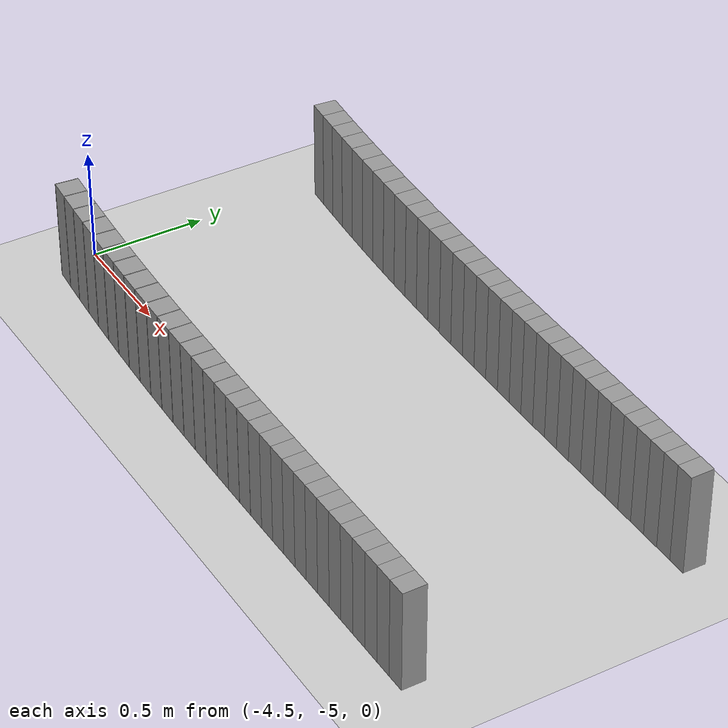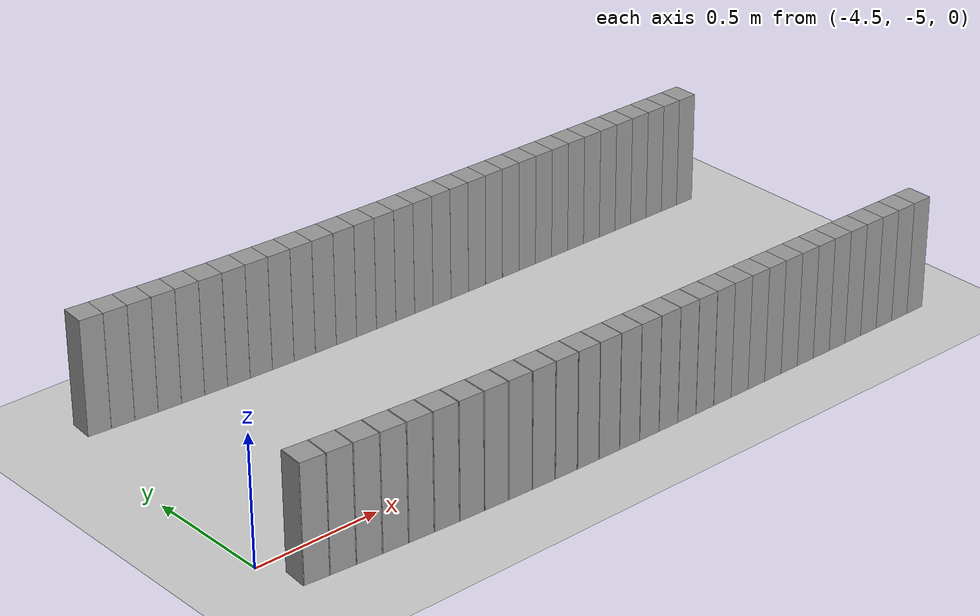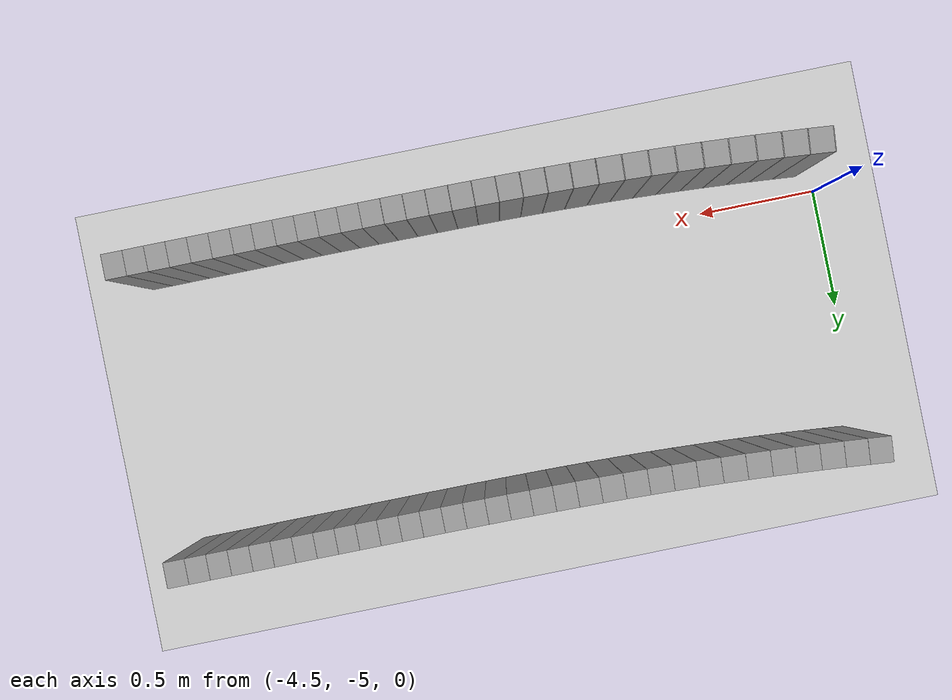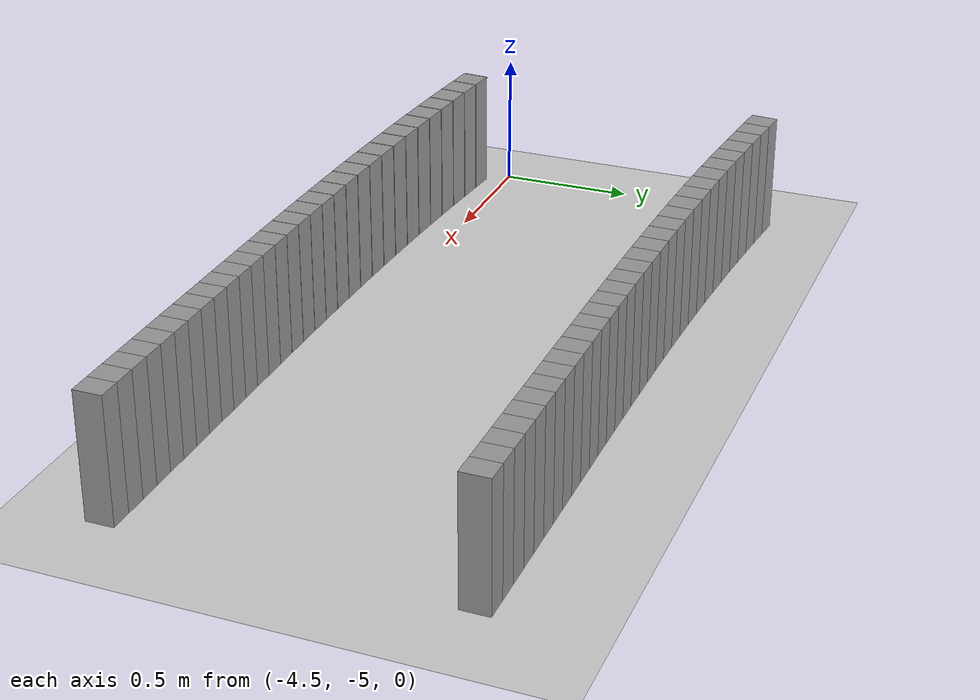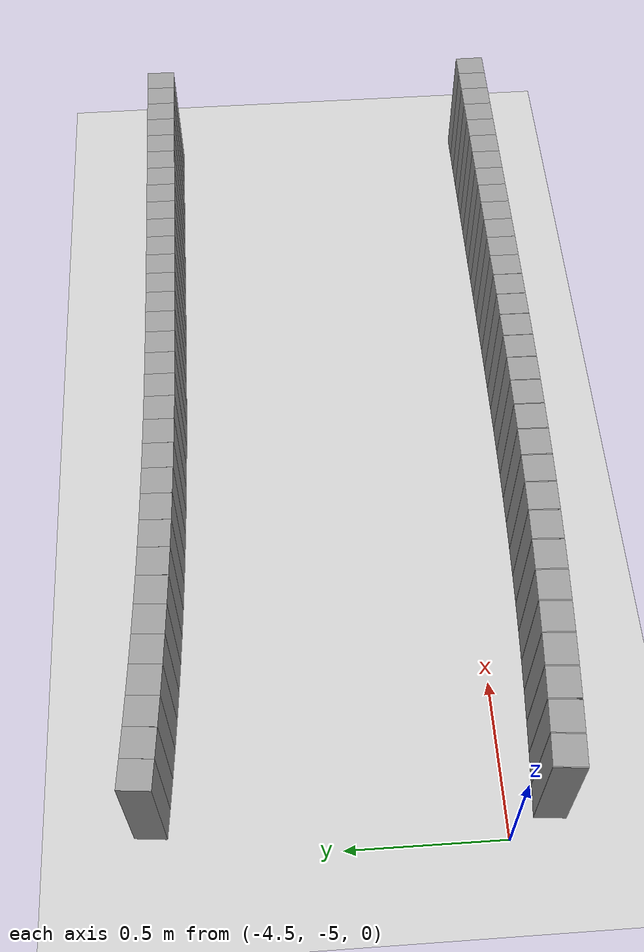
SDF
<sdf version="1.6">
 <world name="default">
  <include><uri>model://ground_plane</uri></include>
  <include><uri>model://sun</uri></include>
  <model name="wall_492_outward">
   <static>true</static>
   <link name="link">
    <collision name="collision">
     <geometry><box><size>0.09068595966989322 0.1 0.45</size></box></geometry>
    </collision>
    <visual name="visual">
     <geometry><box><size>0.09068595966989322 0.1 0.45</size></box></geometry>
     <material>
      <script><uri>file://media/materials/scripts/gazebo.material</uri><name>Gazebo/Gray</name></script>
     </material>
    </visual>
   </link>
   <pose>-4.378430754349651 -3.930292795753641 0.225 0 0 -0.0923290706793078</pose>
  </model>
  <model name="wall_493_outward">
   <static>true</static>
   <link name="link">
    <collision name="collision">
     <geometry><box><size>0.09215291821813895 0.1 0.45</size></box></geometry>
    </collision>
    <visual name="visual">
     <geometry><box><size>0.09215291821813895 0.1 0.45</size></box></geometry>
     <material>
      <script><uri>file://media/materials/scripts/gazebo.material</uri><name>Gazebo/Gray</name></script>
     </material>
    </visual>
   </link>
   <pose>-4.287378541252437 -3.9384749730468585 0.225 0 0 -0.0869575330737349</pose>
  </model>
  <model name="wall_494_outward">
   <static>true</static>
   <link name="link">
    <collision name="collision">
     <geometry><box><size>0.09332906607613842 0.1 0.45</size></box></geometry>
    </collision>
    <visual name="visual">
     <geometry><box><size>0.09332906607613842 0.1 0.45</size></box></geometry>
     <material>
      <script><uri>file://media/materials/scripts/gazebo.material</uri><name>Gazebo/Gray</name></script>
     </material>
    </visual>
   </link>
   <pose>-4.194965194341023 -3.946259078895164 0.225 0 0 -0.08114540446364624</pose>
  </model>
  <model name="wall_495_outward">
   <static>true</static>
   <link name="link">
    <collision name="collision">
     <geometry><box><size>0.0942073351267646 0.1 0.45</size></box></geometry>
    </collision>
    <visual name="visual">
     <geometry><box><size>0.0942073351267646 0.1 0.45</size></box></geometry>
     <material>
      <script><uri>file://media/materials/scripts/gazebo.material</uri><name>Gazebo/Gray</name></script>
     </material>
    </visual>
   </link>
   <pose>-4.101482858434321 -3.9535696554525073 0.225 0 0 -0.07497135058936592</pose>
  </model>
  <model name="wall_496_outward">
   <static>true</static>
   <link name="link">
    <collision name="collision">
     <geometry><box><size>0.09479352483861028 0.1 0.45</size></box></geometry>
    </collision>
    <visual name="visual">
     <geometry><box><size>0.09479352483861028 0.1 0.45</size></box></geometry>
     <material>
      <script><uri>file://media/materials/scripts/gazebo.material</uri><name>Gazebo/Gray</name></script>
     </material>
    </visual>
   </link>
   <pose>-4.007226000580614 -3.9603433852904404 0.225 0 0 -0.06853112435254348</pose>
  </model>
  <model name="wall_497_outward">
   <static>true</static>
   <link name="link">
    <collision name="collision">
     <geometry><box><size>0.09509572229106611 0.1 0.45</size></box></geometry>
    </collision>
    <visual name="visual">
     <geometry><box><size>0.09509572229106611 0.1 0.45</size></box></geometry>
     <material>
      <script><uri>file://media/materials/scripts/gazebo.material</uri><name>Gazebo/Gray</name></script>
     </material>
    </visual>
   </link>
   <pose>-3.912483809104236 -3.9665321446471573 0.225 0 0 -0.06193823305481885</pose>
  </model>
  <model name="wall_498_outward">
   <static>true</static>
   <link name="link">
    <collision name="collision">
     <geometry><box><size>0.09513239084984035 0.1 0.45</size></box></geometry>
    </collision>
    <visual name="visual">
     <geometry><box><size>0.09513239084984035 0.1 0.45</size></box></geometry>
     <material>
      <script><uri>file://media/materials/scripts/gazebo.material</uri><name>Gazebo/Gray</name></script>
     </material>
    </visual>
   </link>
   <pose>-3.8175336663359123 -3.9721048258202507 0.225 0 0 -0.055309752761574627</pose>
  </model>
  <model name="wall_499_outward">
   <static>true</static>
   <link name="link">
    <collision name="collision">
     <geometry><box><size>0.09492510796500421 0.1 0.45</size></box></geometry>
    </collision>
    <visual name="visual">
     <geometry><box><size>0.09492510796500421 0.1 0.45</size></box></geometry>
     <material>
      <script><uri>file://media/materials/scripts/gazebo.material</uri><name>Gazebo/Gray</name></script>
     </material>
    </visual>
   </link>
   <pose>-3.72263409794573 -3.9770483766909503 0.225 0 0 -0.04877392948051919</pose>
  </model>
  <model name="wall_500_outward">
   <static>true</static>
   <link name="link">
    <collision name="collision">
     <geometry><box><size>0.09449471242001156 0.1 0.45</size></box></geometry>
    </collision>
    <visual name="visual">
     <geometry><box><size>0.09449471242001156 0.1 0.45</size></box></geometry>
     <material>
      <script><uri>file://media/materials/scripts/gazebo.material</uri><name>Gazebo/Gray</name></script>
     </material>
    </visual>
   </link>
   <pose>-3.6280231827447254 -3.981367169139006 0.225 0 0 -0.04244421560597662</pose>
  </model>
  <model name="wall_501_outward">
   <static>true</static>
   <link name="link">
    <collision name="collision">
     <geometry><box><size>0.09386748407110541 0.1 0.45</size></box></geometry>
    </collision>
    <visual name="visual">
     <geometry><box><size>0.09386748407110541 0.1 0.45</size></box></geometry>
     <material>
      <script><uri>file://media/materials/scripts/gazebo.material</uri><name>Gazebo/Gray</name></script>
     </material>
    </visual>
   </link>
   <pose>-3.533915769664726 -3.9850811627304763 0.225 0 0 -0.03642574918023505</pose>
  </model>
  <model name="wall_502_outward">
   <static>true</static>
   <link name="link">
    <collision name="collision">
     <geometry><box><size>0.09306987827697667 0.1 0.45</size></box></geometry>
    </collision>
    <visual name="visual">
     <geometry><box><size>0.09306987827697667 0.1 0.45</size></box></geometry>
     <material>
      <script><uri>file://media/materials/scripts/gazebo.material</uri><name>Gazebo/Gray</name></script>
     </material>
    </visual>
   </link>
   <pose>-3.4405003147137005 -3.9882241541487 0.225 0 0 -0.03081554862152106</pose>
  </model>
  <model name="wall_503_outward">
   <static>true</static>
   <link name="link">
    <collision name="collision">
     <geometry><box><size>0.09212973341280335 0.1 0.45</size></box></geometry>
    </collision>
    <visual name="visual">
     <geometry><box><size>0.09212973341280335 0.1 0.45</size></box></geometry>
     <material>
      <script><uri>file://media/materials/scripts/gazebo.material</uri><name>Gazebo/Gray</name></script>
     </material>
    </visual>
   </link>
   <pose>-3.3479377892946824 -3.9908407131273007 0.225 0 0 -0.025679358927565114</pose>
  </model>
  <model name="wall_504_outward">
   <static>true</static>
   <link name="link">
    <collision name="collision">
     <geometry><box><size>0.09107926288362682 0.1 0.45</size></box></geometry>
    </collision>
    <visual name="visual">
     <geometry><box><size>0.09107926288362682 0.1 0.45</size></box></geometry>
     <material>
      <script><uri>file://media/materials/scripts/gazebo.material</uri><name>Gazebo/Gray</name></script>
     </material>
    </visual>
   </link>
   <pose>-3.2563585826073833 -3.9929827519544747 0.225 0 0 -0.02106568510119971</pose>
  </model>
  <model name="wall_505_outward">
   <static>true</static>
   <link name="link">
    <collision name="collision">
     <geometry><box><size>0.08995566165365877 0.1 0.45</size></box></geometry>
    </collision>
    <visual name="visual">
     <geometry><box><size>0.08995566165365877 0.1 0.45</size></box></geometry>
     <material>
      <script><uri>file://media/materials/scripts/gazebo.material</uri><name>Gazebo/Gray</name></script>
     </material>
    </visual>
   </link>
   <pose>-3.1658577214169066 -3.9947064677801576 0.225 0 0 -0.01699726370911794</pose>
  </model>
  <model name="wall_506_outward">
   <static>true</static>
   <link name="link">
    <collision name="collision">
     <geometry><box><size>0.08879694049244939 0.1 0.45</size></box></geometry>
    </collision>
    <visual name="visual">
     <geometry><box><size>0.08879694049244939 0.1 0.45</size></box></geometry>
     <material>
      <script><uri>file://media/materials/scripts/gazebo.material</uri><name>Gazebo/Gray</name></script>
     </material>
    </visual>
   </link>
   <pose>-3.0764919542721643 -3.9960696348860143 0.225 0 0 -0.013485194604481318</pose>
  </model>
  <model name="wall_507_outward">
   <static>true</static>
   <link name="link">
    <collision name="collision">
     <geometry><box><size>0.0876418035020083 0.1 0.45</size></box></geometry>
    </collision>
    <visual name="visual">
     <geometry><box><size>0.0876418035020083 0.1 0.45</size></box></geometry>
     <material>
      <script><uri>file://media/materials/scripts/gazebo.material</uri><name>Gazebo/Gray</name></script>
     </material>
    </visual>
   </link>
   <pose>-2.988279039164019 -3.997128868970515 0.225 0 0 -0.010509566864553486</pose>
  </model>
  <model name="wall_508_outward">
   <static>true</static>
   <link name="link">
    <collision name="collision">
     <geometry><box><size>0.08653645617514082 0.1 0.45</size></box></geometry>
    </collision>
    <visual name="visual">
     <geometry><box><size>0.08653645617514082 0.1 0.45</size></box></geometry>
     <material>
      <script><uri>file://media/materials/scripts/gazebo.material</uri><name>Gazebo/Gray</name></script>
     </material>
    </visual>
   </link>
   <pose>-2.901193726605305 -3.9979371245555724 0.225 0 0 -0.00803659230562324</pose>
  </model>
  <model name="wall_509_outward">
   <static>true</static>
   <link name="link">
    <collision name="collision">
     <geometry><box><size>0.08551885083889642 0.1 0.45</size></box></geometry>
    </collision>
    <visual name="visual">
     <geometry><box><size>0.08551885083889642 0.1 0.45</size></box></geometry>
     <material>
      <script><uri>file://media/materials/scripts/gazebo.material</uri><name>Gazebo/Gray</name></script>
     </material>
    </visual>
   </link>
   <pose>-2.8151682479716347 -3.9985427240241065 0.225 0 0 -0.006030849652169696</pose>
  </model>
  <model name="wall_510_outward">
   <static>true</static>
   <link name="link">
    <collision name="collision">
     <geometry><box><size>0.08462511511139649 0.1 0.45</size></box></geometry>
    </collision>
    <visual name="visual">
     <geometry><box><size>0.08462511511139649 0.1 0.45</size></box></geometry>
     <material>
      <script><uri>file://media/materials/scripts/gazebo.material</uri><name>Gazebo/Gray</name></script>
     </material>
    </visual>
   </link>
   <pose>-2.730097458334881 -3.998988165553312 0.225 0 0 -0.004432916647774569</pose>
  </model>
  <model name="wall_511_outward">
   <static>true</static>
   <link name="link">
    <collision name="collision">
     <geometry><box><size>0.08388573940246179 0.1 0.45</size></box></geometry>
    </collision>
    <visual name="visual">
     <geometry><box><size>0.08388573940246179 0.1 0.45</size></box></geometry>
     <material>
      <script><uri>file://media/materials/scripts/gazebo.material</uri><name>Gazebo/Gray</name></script>
     </material>
    </visual>
   </link>
   <pose>-2.645842660860012 -3.999309730594722 0.225 0 0 -0.003194770501325026</pose>
  </model>
  <model name="wall_512_outward">
   <static>true</static>
   <link name="link">
    <collision name="collision">
     <geometry><box><size>0.08331772802041469 0.1 0.45</size></box></geometry>
    </collision>
    <visual name="visual">
     <geometry><box><size>0.08331772802041469 0.1 0.45</size></box></geometry>
     <material>
      <script><uri>file://media/materials/scripts/gazebo.material</uri><name>Gazebo/Gray</name></script>
     </material>
    </visual>
   </link>
   <pose>-2.562241247065816 -3.9995376480716933 0.225 0 0 -0.0022545007850144298</pose>
  </model>
  <model name="wall_513_outward">
   <static>true</static>
   <link name="link">
    <collision name="collision">
     <geometry><box><size>0.08293020767326222 0.1 0.45</size></box></geometry>
    </collision>
    <visual name="visual">
     <geometry><box><size>0.08293020767326222 0.1 0.45</size></box></geometry>
     <material>
      <script><uri>file://media/materials/scripts/gazebo.material</uri><name>Gazebo/Gray</name></script>
     </material>
    </visual>
   </link>
   <pose>-2.4791174353803456 -3.9996961478665063 0.225 0 0 -0.0015574532050864909</pose>
  </model>
  <model name="wall_514_outward">
   <static>true</static>
   <link name="link">
    <collision name="collision">
     <geometry><box><size>0.08271800158028444 0.1 0.45</size></box></geometry>
    </collision>
    <visual name="visual">
     <geometry><box><size>0.08271800158028444 0.1 0.45</size></box></geometry>
     <material>
      <script><uri>file://media/materials/scripts/gazebo.material</uri><name>Gazebo/Gray</name></script>
     </material>
    </visual>
   </link>
   <pose>-2.3962934039817583 -3.999804286843619 0.225 0 0 -0.0010531940223855185</pose>
  </model>
  <model name="wall_515_outward">
   <static>true</static>
   <link name="link">
    <collision name="collision">
     <geometry><box><size>0.08266485304090782 0.1 0.45</size></box></geometry>
    </collision>
    <visual name="visual">
     <geometry><box><size>0.08266485304090782 0.1 0.45</size></box></geometry>
     <material>
      <script><uri>file://media/materials/scripts/gazebo.material</uri><name>Gazebo/Gray</name></script>
     </material>
    </visual>
   </link>
   <pose>-2.3136020096557885 -3.9998766642405825 0.225 0 0 -0.0006972335614733618</pose>
  </model>
  <model name="wall_516_outward">
   <static>true</static>
   <link name="link">
    <collision name="collision">
     <geometry><box><size>0.0827397409179019 0.1 0.45</size></box></geometry>
    </collision>
    <visual name="visual">
     <geometry><box><size>0.0827397409179019 0.1 0.45</size></box></geometry>
     <material>
      <script><uri>file://media/materials/scripts/gazebo.material</uri><name>Gazebo/Gray</name></script>
     </material>
    </visual>
   </link>
   <pose>-2.230899726949211 -3.99992418232758 0.225 0 0 -0.0004520133811085437</pose>
  </model>
  <model name="wall_517_outward">
   <static>true</static>
   <link name="link">
    <collision name="collision">
     <geometry><box><size>0.08290997204144468 0.1 0.45</size></box></geometry>
    </collision>
    <visual name="visual">
     <geometry><box><size>0.08290997204144468 0.1 0.45</size></box></geometry>
     <material>
      <script><uri>file://media/materials/scripts/gazebo.material</uri><name>Gazebo/Gray</name></script>
     </material>
    </visual>
   </link>
   <pose>-2.1480748763283017 -3.999954516082421 0.225 0 0 -0.00028064225138934413</pose>
  </model>
  <model name="wall_518_outward">
   <static>true</static>
   <link name="link">
    <collision name="collision">
     <geometry><box><size>0.08313143534032821 0.1 0.45</size></box></geometry>
    </collision>
    <visual name="visual">
     <geometry><box><size>0.08313143534032821 0.1 0.45</size></box></geometry>
     <material>
      <script><uri>file://media/materials/scripts/gazebo.material</uri><name>Gazebo/Gray</name></script>
     </material>
    </visual>
   </link>
   <pose>-2.0650541749077735 -3.999973432009655 0.225 0 0 -0.0001751902101989114</pose>
  </model>
  <model name="wall_519_outward">
   <static>true</static>
   <link name="link">
    <collision name="collision">
     <geometry><box><size>0.08334973034785155 0.1 0.45</size></box></geometry>
    </collision>
    <visual name="visual">
     <geometry><box><size>0.08334973034785155 0.1 0.45</size></box></geometry>
     <material>
      <script><uri>file://media/materials/scripts/gazebo.material</uri><name>Gazebo/Gray</name></script>
     </material>
    </visual>
   </link>
   <pose>-1.9818135929410565 -3.9999851819587087 0.225 0 0 -0.00010721191934723112</pose>
  </model>
  <model name="wall_520_outward">
   <static>true</static>
   <link name="link">
    <collision name="collision">
     <geometry><box><size>0.08352584369516561 0.1 0.45</size></box></geometry>
    </collision>
    <visual name="visual">
     <geometry><box><size>0.08352584369516561 0.1 0.45</size></box></geometry>
     <material>
      <script><uri>file://media/materials/scripts/gazebo.material</uri><name>Gazebo/Gray</name></script>
     </material>
    </visual>
   </link>
   <pose>-1.8983758062292113 -3.999992070602322 0.225 0 0 -5.7960536100117336e-05</pose>
  </model>
  <model name="wall_521_outward">
   <static>true</static>
   <link name="link">
    <collision name="collision">
     <geometry><box><size>0.08361672007936877 0.1 0.45</size></box></geometry>
    </collision>
    <visual name="visual">
     <geometry><box><size>0.08361672007936877 0.1 0.45</size></box></geometry>
     <material>
      <script><uri>file://media/materials/scripts/gazebo.material</uri><name>Gazebo/Gray</name></script>
     </material>
    </visual>
   </link>
   <pose>-1.8148045244368476 -3.9999959298940637 0.225 0 0 -3.4411548374948586e-05</pose>
  </model>
  <model name="wall_522_outward">
   <static>true</static>
   <link name="link">
    <collision name="collision">
     <geometry><box><size>0.08358014926168003 0.1 0.45</size></box></geometry>
    </collision>
    <visual name="visual">
     <geometry><box><size>0.08358014926168003 0.1 0.45</size></box></geometry>
     <material>
      <script><uri>file://media/materials/scripts/gazebo.material</uri><name>Gazebo/Gray</name></script>
     </material>
    </visual>
   </link>
   <pose>-1.731206089799474 -3.9999982063396065 0.225 0 0 -2.004674904921061e-05</pose>
  </model>
  <model name="wall_523_outward">
   <static>true</static>
   <link name="link">
    <collision name="collision">
     <geometry><box><size>0.08338973849064733 0.1 0.45</size></box></geometry>
    </collision>
    <visual name="visual">
     <geometry><box><size>0.08338973849064733 0.1 0.45</size></box></geometry>
     <material>
      <script><uri>file://media/materials/scripts/gazebo.material</uri><name>Gazebo/Gray</name></script>
     </material>
    </visual>
   </link>
   <pose>-1.647721145934447 -3.9999995220473723 0.225 0 0 -1.1463104116045617e-05</pose>
  </model>
  <model name="wall_667_inward">
   <static>true</static>
   <link name="link">
    <collision name="collision">
     <geometry><box><size>0.0032229186886621694 0.1 0.45</size></box></geometry>
    </collision>
    <visual name="visual">
     <geometry><box><size>0.0032229186886621694 0.1 0.45</size></box></geometry>
     <material>
      <script><uri>file://media/materials/scripts/gazebo.material</uri><name>Gazebo/Gray</name></script>
     </material>
    </visual>
   </link>
   <pose>-4.440708850762173 -5.129655000435985 0.225 0 0 -0.08964330187653773</pose>
  </model>
  <model name="wall_668_inward">
   <static>true</static>
   <link name="link">
    <collision name="collision">
     <geometry><box><size>0.09550802686613065 0.1 0.45</size></box></geometry>
    </collision>
    <visual name="visual">
     <geometry><box><size>0.09550802686613065 0.1 0.45</size></box></geometry>
     <material>
      <script><uri>file://media/materials/scripts/gazebo.material</uri><name>Gazebo/Gray</name></script>
     </material>
    </visual>
   </link>
   <pose>-4.391530283363075 -5.133946603401631 0.225 0 0 -0.08695753307373678</pose>
  </model>
  <model name="wall_669_inward">
   <static>true</static>
   <link name="link">
    <collision name="collision">
     <geometry><box><size>0.0034872722575909356 0.1 0.45</size></box></geometry>
    </collision>
    <visual name="visual">
     <geometry><box><size>0.0034872722575909356 0.1 0.45</size></box></geometry>
     <material>
      <script><uri>file://media/materials/scripts/gazebo.material</uri><name>Gazebo/Gray</name></script>
     </material>
    </visual>
   </link>
   <pose>-4.342219224197639 -5.138240325905064 0.225 0 0 -0.08405146876864791</pose>
  </model>
  <model name="wall_670_inward">
   <static>true</static>
   <link name="link">
    <collision name="collision">
     <geometry><box><size>0.09692493161361337 0.1 0.45</size></box></geometry>
    </collision>
    <visual name="visual">
     <geometry><box><size>0.09692493161361337 0.1 0.45</size></box></geometry>
     <material>
      <script><uri>file://media/materials/scripts/gazebo.material</uri><name>Gazebo/Gray</name></script>
     </material>
    </visual>
   </link>
   <pose>-4.292178742607085 -5.142314900744984 0.225 0 0 -0.08114540446364692</pose>
  </model>
  <model name="wall_671_inward">
   <static>true</static>
   <link name="link">
    <collision name="collision">
     <geometry><box><size>0.003704426440862779 0.1 0.45</size></box></geometry>
    </collision>
    <visual name="visual">
     <geometry><box><size>0.003704426440862779 0.1 0.45</size></box></geometry>
     <material>
      <script><uri>file://media/materials/scripts/gazebo.material</uri><name>Gazebo/Gray</name></script>
     </material>
    </visual>
   </link>
   <pose>-4.242029168466148 -5.14638752688562 0.225 0 0 -0.07805837752638563</pose>
  </model>
  <model name="wall_672_inward">
   <static>true</static>
   <link name="link">
    <collision name="collision">
     <geometry><box><size>0.09799163172183481 0.1 0.45</size></box></geometry>
    </collision>
    <visual name="visual">
     <geometry><box><size>0.09799163172183481 0.1 0.45</size></box></geometry>
     <material>
      <script><uri>file://media/materials/scripts/gazebo.material</uri><name>Gazebo/Gray</name></script>
     </material>
    </visual>
   </link>
   <pose>-4.191324410381142 -5.150201803248099 0.225 0 0 -0.07497135058936465</pose>
  </model>
  <model name="wall_673_inward">
   <static>true</static>
   <link name="link">
    <collision name="collision">
     <geometry><box><size>0.0038641290641433395 0.1 0.45</size></box></geometry>
    </collision>
    <visual name="visual">
     <geometry><box><size>0.0038641290641433395 0.1 0.45</size></box></geometry>
     <material>
      <script><uri>file://media/materials/scripts/gazebo.material</uri><name>Gazebo/Gray</name></script>
     </material>
    </visual>
   </link>
   <pose>-4.140539132212129 -5.154010154734728 0.225 0 0 -0.07175123747110966</pose>
  </model>
  <model name="wall_674_inward">
   <static>true</static>
   <link name="link">
    <collision name="collision">
     <geometry><box><size>0.09870347394110407 0.1 0.45</size></box></geometry>
    </collision>
    <visual name="visual">
     <geometry><box><size>0.09870347394110407 0.1 0.45</size></box></geometry>
     <material>
      <script><uri>file://media/materials/scripts/gazebo.material</uri><name>Gazebo/Gray</name></script>
     </material>
    </visual>
   </link>
   <pose>-4.089376147179107 -5.157528147112215 0.225 0 0 -0.06853112435254204</pose>
  </model>
  <model name="wall_675_inward">
   <static>true</static>
   <link name="link">
    <collision name="collision">
     <geometry><box><size>0.003955727614437429 0.1 0.45</size></box></geometry>
    </collision>
    <visual name="visual">
     <geometry><box><size>0.003955727614437429 0.1 0.45</size></box></geometry>
     <material>
      <script><uri>file://media/materials/scripts/gazebo.material</uri><name>Gazebo/Gray</name></script>
     </material>
    </visual>
   </link>
   <pose>-4.0381665986083 -5.161036564203316 0.225 0 0 -0.06523467870370168</pose>
  </model>
  <model name="wall_676_inward">
   <static>true</static>
   <link name="link">
    <collision name="collision">
     <geometry><box><size>0.09906214821354899 0.1 0.45</size></box></geometry>
    </collision>
    <visual name="visual">
     <geometry><box><size>0.09906214821354899 0.1 0.45</size></box></geometry>
     <material>
      <script><uri>file://media/materials/scripts/gazebo.material</uri><name>Gazebo/Gray</name></script>
     </material>
    </visual>
   </link>
   <pose>-3.9867568464314544 -5.164231404041889 0.225 0 0 -0.06193823305481752</pose>
  </model>
  <model name="wall_677_inward">
   <static>true</static>
   <link name="link">
    <collision name="collision">
     <geometry><box><size>0.003977080895102358 0.1 0.45</size></box></geometry>
    </collision>
    <visual name="visual">
     <geometry><box><size>0.003977080895102358 0.1 0.45</size></box></geometry>
     <material>
      <script><uri>file://media/materials/scripts/gazebo.material</uri><name>Gazebo/Gray</name></script>
     </material>
    </visual>
   </link>
   <pose>-3.9353356267462676 -5.167413819481836 0.225 0 0 -0.05862399290812194</pose>
  </model>
  <model name="wall_678_inward">
   <static>true</static>
   <link name="link">
    <collision name="collision">
     <geometry><box><size>0.09908169618275356 0.1 0.45</size></box></geometry>
    </collision>
    <visual name="visual">
     <geometry><box><size>0.09908169618275356 0.1 0.45</size></box></geometry>
     <material>
      <script><uri>file://media/materials/scripts/gazebo.material</uri><name>Gazebo/Gray</name></script>
     </material>
    </visual>
   </link>
   <pose>-3.8838854119007005 -5.170269024105978 0.225 0 0 -0.055309752761574946</pose>
  </model>
  <model name="wall_679_inward">
   <static>true</static>
   <link name="link">
    <collision name="collision">
     <geometry><box><size>0.003921486988869487 0.1 0.45</size></box></geometry>
    </collision>
    <visual name="visual">
     <geometry><box><size>0.003921486988869487 0.1 0.45</size></box></geometry>
     <material>
      <script><uri>file://media/materials/scripts/gazebo.material</uri><name>Gazebo/Gray</name></script>
     </material>
    </visual>
   </link>
   <pose>-3.8324622324999478 -5.173109713959131 0.225 0 0 -0.05204184112111273</pose>
  </model>
  <model name="wall_680_inward">
   <static>true</static>
   <link name="link">
    <collision name="collision">
     <geometry><box><size>0.09878478243162188 0.1 0.45</size></box></geometry>
    </collision>
    <visual name="visual">
     <geometry><box><size>0.09878478243162188 0.1 0.45</size></box></geometry>
     <material>
      <script><uri>file://media/materials/scripts/gazebo.material</uri><name>Gazebo/Gray</name></script>
     </material>
    </visual>
   </link>
   <pose>-3.7811704904235928 -5.175619814575034 0.225 0 0 -0.048773929480521096</pose>
  </model>
  <model name="wall_681_inward">
   <static>true</static>
   <link name="link">
    <collision name="collision">
     <geometry><box><size>0.0037978219846868636 0.1 0.45</size></box></geometry>
    </collision>
    <visual name="visual">
     <geometry><box><size>0.0037978219846868636 0.1 0.45</size></box></geometry>
     <material>
      <script><uri>file://media/materials/scripts/gazebo.material</uri><name>Gazebo/Gray</name></script>
     </material>
    </visual>
   </link>
   <pose>-3.729939900958661 -5.1781144980893234 0.225 0 0 -0.045609072543203046</pose>
  </model>
  <model name="wall_682_inward">
   <static>true</static>
   <link name="link">
    <collision name="collision">
     <geometry><box><size>0.09819917830009556 0.1 0.45</size></box></geometry>
    </collision>
    <visual name="visual">
     <geometry><box><size>0.09819917830009556 0.1 0.45</size></box></geometry>
     <material>
      <script><uri>file://media/materials/scripts/gazebo.material</uri><name>Gazebo/Gray</name></script>
     </material>
    </visual>
   </link>
   <pose>-3.67898759561593 -5.18028444351636 0.225 0 0 -0.04244421560597523</pose>
  </model>
  <model name="wall_683_inward">
   <static>true</static>
   <link name="link">
    <collision name="collision">
     <geometry><box><size>0.0036110744054319863 0.1 0.45</size></box></geometry>
    </collision>
    <visual name="visual">
     <geometry><box><size>0.0036110744054319863 0.1 0.45</size></box></geometry>
     <material>
      <script><uri>file://media/materials/scripts/gazebo.material</uri><name>Gazebo/Gray</name></script>
     </material>
    </visual>
   </link>
   <pose>-3.6281280930893476 -5.182438994272558 0.225 0 0 -0.0394349823930067</pose>
  </model>
  <model name="wall_684_inward">
   <static>true</static>
   <link name="link">
    <collision name="collision">
     <geometry><box><size>0.0973560940310228 0.1 0.45</size></box></geometry>
    </collision>
    <visual name="visual">
     <geometry><box><size>0.0973560940310228 0.1 0.45</size></box></geometry>
     <material>
      <script><uri>file://media/materials/scripts/gazebo.material</uri><name>Gazebo/Gray</name></script>
     </material>
    </visual>
   </link>
   <pose>-3.577678202903389 -5.1842829193950575 0.225 0 0 -0.03642574918023747</pose>
  </model>
  <model name="wall_685_inward">
   <static>true</static>
   <link name="link">
    <collision name="collision">
     <geometry><box><size>0.003366115920797818 0.1 0.45</size></box></geometry>
    </collision>
    <visual name="visual">
     <geometry><box><size>0.003366115920797818 0.1 0.45</size></box></geometry>
     <material>
      <script><uri>file://media/materials/scripts/gazebo.material</uri><name>Gazebo/Gray</name></script>
     </material>
    </visual>
   </link>
   <pose>-3.52735033936115 -5.186112236483883 0.225 0 0 -0.03362064890107437</pose>
  </model>
  <model name="wall_686_inward">
   <static>true</static>
   <link name="link">
    <collision name="collision">
     <geometry><box><size>0.09629380315454554 0.1 0.45</size></box></geometry>
    </collision>
    <visual name="visual">
     <geometry><box><size>0.09629380315454554 0.1 0.45</size></box></geometry>
     <material>
      <script><uri>file://media/materials/scripts/gazebo.material</uri><name>Gazebo/Gray</name></script>
     </material>
    </visual>
   </link>
   <pose>-3.4775441892471823 -5.187652249707188 0.225 0 0 -0.030815548621509387</pose>
  </model>
  <model name="wall_687_inward">
   <static>true</static>
   <link name="link">
    <collision name="collision">
     <geometry><box><size>0.0030817104289990274 0.1 0.45</size></box></geometry>
    </collision>
    <visual name="visual">
     <geometry><box><size>0.0030817104289990274 0.1 0.45</size></box></geometry>
     <material>
      <script><uri>file://media/materials/scripts/gazebo.material</uri><name>Gazebo/Gray</name></script>
     </material>
    </visual>
   </link>
   <pose>-3.427879905445761 -5.189179207537752 0.225 0 0 -0.02824745377478556</pose>
  </model>
  <model name="wall_688_inward">
   <static>true</static>
   <link name="link">
    <collision name="collision">
     <geometry><box><size>0.09505469831147234 0.1 0.45</size></box></geometry>
    </collision>
    <visual name="visual">
     <geometry><box><size>0.09505469831147234 0.1 0.45</size></box></geometry>
     <material>
      <script><uri>file://media/materials/scripts/gazebo.material</uri><name>Gazebo/Gray</name></script>
     </material>
    </visual>
   </link>
   <pose>-3.3788279853795404 -5.190443064712578 0.225 0 0 -0.025679358927565264</pose>
  </model>
  <model name="wall_689_inward">
   <static>true</static>
   <link name="link">
    <collision name="collision">
     <geometry><box><size>0.0027682018406542455 0.1 0.45</size></box></geometry>
    </collision>
    <visual name="visual">
     <geometry><box><size>0.0027682018406542455 0.1 0.45</size></box></geometry>
     <material>
      <script><uri>file://media/materials/scripts/gazebo.material</uri><name>Gazebo/Gray</name></script>
     </material>
    </visual>
   </link>
   <pose>-3.3299325829423214 -5.191695749422979 0.225 0 0 -0.023372522014212024</pose>
  </model>
  <model name="wall_690_inward">
   <static>true</static>
   <link name="link">
    <collision name="collision">
     <geometry><box><size>0.09368389558793429 0.1 0.45</size></box></geometry>
    </collision>
    <visual name="visual">
     <geometry><box><size>0.09368389558793429 0.1 0.45</size></box></geometry>
     <material>
      <script><uri>file://media/materials/scripts/gazebo.material</uri><name>Gazebo/Gray</name></script>
     </material>
    </visual>
   </link>
   <pose>-3.2817173052399093 -5.192714781149229 0.225 0 0 -0.02106568510120087</pose>
  </model>
  <model name="wall_691_inward">
   <static>true</static>
   <link name="link">
    <collision name="collision">
     <geometry><box><size>0.0024410511517311876 0.1 0.45</size></box></geometry>
    </collision>
    <visual name="visual">
     <geometry><box><size>0.0024410511517311876 0.1 0.45</size></box></geometry>
     <material>
      <script><uri>file://media/materials/scripts/gazebo.material</uri><name>Gazebo/Gray</name></script>
     </material>
    </visual>
   </link>
   <pose>-3.2336654458781426 -5.193724692890568 0.225 0 0 -0.019031474405287217</pose>
  </model>
  <model name="wall_692_inward">
   <static>true</static>
   <link name="link">
    <collision name="collision">
     <geometry><box><size>0.09222981156902774 0.1 0.45</size></box></geometry>
    </collision>
    <visual name="visual">
     <geometry><box><size>0.09222981156902774 0.1 0.45</size></box></geometry>
     <material>
      <script><uri>file://media/materials/scripts/gazebo.material</uri><name>Gazebo/Gray</name></script>
     </material>
    </visual>
   </link>
   <pose>-3.1863368968450105 -5.194531709362536 0.225 0 0 -0.016997263709119234</pose>
  </model>
  <model name="wall_693_inward">
   <static>true</static>
   <link name="link">
    <collision name="collision">
     <geometry><box><size>0.002107240379783545 0.1 0.45</size></box></geometry>
    </collision>
    <visual name="visual">
     <geometry><box><size>0.002107240379783545 0.1 0.45</size></box></geometry>
     <material>
      <script><uri>file://media/materials/scripts/gazebo.material</uri><name>Gazebo/Gray</name></script>
     </material>
    </visual>
   </link>
   <pose>-3.139175154542179 -5.195331556680479 0.225 0 0 -0.015241229156638619</pose>
  </model>
  <model name="wall_694_inward">
   <static>true</static>
   <link name="link">
    <collision name="collision">
     <geometry><box><size>0.09074325128763792 0.1 0.45</size></box></geometry>
    </collision>
    <visual name="visual">
     <geometry><box><size>0.09074325128763792 0.1 0.45</size></box></geometry>
     <material>
      <script><uri>file://media/materials/scripts/gazebo.material</uri><name>Gazebo/Gray</name></script>
     </material>
    </visual>
   </link>
   <pose>-3.092754156444772 -5.195959441182968 0.225 0 0 -0.013485194604477557</pose>
  </model>
  <model name="wall_695_inward">
   <static>true</static>
   <link name="link">
    <collision name="collision">
     <geometry><box><size>0.001785375985271108 0.1 0.45</size></box></geometry>
    </collision>
    <visual name="visual">
     <geometry><box><size>0.001785375985271108 0.1 0.45</size></box></geometry>
     <material>
      <script><uri>file://media/materials/scripts/gazebo.material</uri><name>Gazebo/Gray</name></script>
     </material>
    </visual>
   </link>
   <pose>-3.046494032416314 -5.196581977501209 0.225 0 0 -0.011997380734579491</pose>
  </model>
  <model name="wall_696_inward">
   <static>true</static>
   <link name="link">
    <collision name="collision">
     <geometry><box><size>0.089276385228395 0.1 0.45</size></box></geometry>
    </collision>
    <visual name="visual">
     <geometry><box><size>0.089276385228395 0.1 0.45</size></box></geometry>
     <material>
      <script><uri>file://media/materials/scripts/gazebo.material</uri><name>Gazebo/Gray</name></script>
     </material>
    </visual>
   </link>
   <pose>-3.0009656811979104 -5.197061806596105 0.225 0 0 -0.010509566864555668</pose>
  </model>
  <model name="wall_697_inward">
   <static>true</static>
   <link name="link">
    <collision name="collision">
     <geometry><box><size>0.001483784357265083 0.1 0.45</size></box></geometry>
    </collision>
    <visual name="visual">
     <geometry><box><size>0.001483784357265083 0.1 0.45</size></box></geometry>
     <material>
      <script><uri>file://media/materials/scripts/gazebo.material</uri><name>Gazebo/Gray</name></script>
     </material>
    </visual>
   </link>
   <pose>-2.9555880934462277 -5.197537805556822 0.225 0 0 -0.009273079585078345</pose>
  </model>
  <model name="wall_698_inward">
   <static>true</static>
   <link name="link">
    <collision name="collision">
     <geometry><box><size>0.08788007191882757 0.1 0.45</size></box></geometry>
    </collision>
    <visual name="visual">
     <geometry><box><size>0.08788007191882757 0.1 0.45</size></box></geometry>
     <material>
      <script><uri>file://media/materials/scripts/gazebo.material</uri><name>Gazebo/Gray</name></script>
     </material>
    </visual>
   </link>
   <pose>-2.910907616171478 -5.197897809437117 0.225 0 0 -0.008036592305625138</pose>
  </model>
  <model name="wall_699_inward">
   <static>true</static>
   <link name="link">
    <collision name="collision">
     <geometry><box><size>0.0012034453903464906 0.1 0.45</size></box></geometry>
    </collision>
    <visual name="visual">
     <geometry><box><size>0.0012034453903464906 0.1 0.45</size></box></geometry>
     <material>
      <script><uri>file://media/materials/scripts/gazebo.material</uri><name>Gazebo/Gray</name></script>
     </material>
    </visual>
   </link>
   <pose>-2.8663672913672817 -5.198255166105438 0.225 0 0 -0.007033720979133259</pose>
  </model>
  <model name="wall_700_inward">
   <static>true</static>
   <link name="link">
    <collision name="collision">
     <geometry><box><size>0.08659995383961708 0.1 0.45</size></box></geometry>
    </collision>
    <visual name="visual">
     <geometry><box><size>0.08659995383961708 0.1 0.45</size></box></geometry>
     <material>
      <script><uri>file://media/materials/scripts/gazebo.material</uri><name>Gazebo/Gray</name></script>
     </material>
    </visual>
   </link>
   <pose>-2.822466394069359 -5.198520532487867 0.225 0 0 -0.006030849652168284</pose>
  </model>
  <model name="wall_701_inward">
   <static>true</static>
   <link name="link">
    <collision name="collision">
     <geometry><box><size>0.0009587597006332712 0.1 0.45</size></box></geometry>
    </collision>
    <visual name="visual">
     <geometry><box><size>0.0009587597006332712 0.1 0.45</size></box></geometry>
     <material>
      <script><uri>file://media/materials/scripts/gazebo.material</uri><name>Gazebo/Gray</name></script>
     </material>
    </visual>
   </link>
   <pose>-2.778687831292693 -5.198784174603567 0.225 0 0 -0.0052318831495966715</pose>
  </model>
  <model name="wall_702_inward">
   <static>true</static>
   <link name="link">
    <collision name="collision">
     <geometry><box><size>0.08547593900658332 0.1 0.45</size></box></geometry>
    </collision>
    <visual name="visual">
     <geometry><box><size>0.08547593900658332 0.1 0.45</size></box></geometry>
     <material>
      <script><uri>file://media/materials/scripts/gazebo.material</uri><name>Gazebo/Gray</name></script>
     </material>
    </visual>
   </link>
   <pose>-2.735470908415896 -5.198976135887506 0.225 0 0 -0.004432916647773155</pose>
  </model>
  <model name="wall_703_inward">
   <static>true</static>
   <link name="link">
    <collision name="collision">
     <geometry><box><size>0.0007428876404175247 0.1 0.45</size></box></geometry>
    </collision>
    <visual name="visual">
     <geometry><box><size>0.0007428876404175247 0.1 0.45</size></box></geometry>
     <material>
      <script><uri>file://media/materials/scripts/gazebo.material</uri><name>Gazebo/Gray</name></script>
     </material>
    </visual>
   </link>
   <pose>-2.692361917709682 -5.199167005748716 0.225 0 0 -0.0038138435743729996</pose>
  </model>
  <model name="wall_704_inward">
   <static>true</static>
   <link name="link">
    <collision name="collision">
     <geometry><box><size>0.08510342597602819 0.1 0.45</size></box></geometry>
    </collision>
    <visual name="visual">
     <geometry><box><size>0.08510342597602819 0.1 0.45</size></box></geometry>
     <material>
      <script><uri>file://media/materials/scripts/gazebo.material</uri><name>Gazebo/Gray</name></script>
     </material>
    </visual>
   </link>
   <pose>-2.6494389803324756 -5.1993042324847085 0.225 0 0 -0.0031916539156087212</pose>
  </model>
  <model name="wall_705_inward">
   <static>true</static>
   <link name="link">
    <collision name="collision">
     <geometry><box><size>0.08422715175339454 0.1 0.45</size></box></geometry>
    </collision>
    <visual name="visual">
     <geometry><box><size>0.08422715175339454 0.1 0.45</size></box></geometry>
     <material>
      <script><uri>file://media/materials/scripts/gazebo.material</uri><name>Gazebo/Gray</name></script>
     </material>
    </visual>
   </link>
   <pose>-2.564774015059981 -5.199534914723838 0.225 0 0 -0.0022527701958865195</pose>
  </model>
  <model name="wall_706_inward">
   <static>true</static>
   <link name="link">
    <collision name="collision">
     <geometry><box><size>0.08359315521047324 0.1 0.45</size></box></geometry>
    </collision>
    <visual name="visual">
     <geometry><box><size>0.08359315521047324 0.1 0.45</size></box></geometry>
     <material>
      <script><uri>file://media/materials/scripts/gazebo.material</uri><name>Gazebo/Gray</name></script>
     </material>
    </visual>
   </link>
   <pose>-2.480864019073401 -5.199694844898055 0.225 0 0 -0.001556540651961092</pose>
  </model>
  <model name="wall_707_inward">
   <static>true</static>
   <link name="link">
    <collision name="collision">
     <geometry><box><size>0.08318964374889304 0.1 0.45</size></box></geometry>
    </collision>
    <visual name="visual">
     <geometry><box><size>0.08318964374889304 0.1 0.45</size></box></geometry>
     <material>
      <script><uri>file://media/materials/scripts/gazebo.material</uri><name>Gazebo/Gray</name></script>
     </material>
    </visual>
   </link>
   <pose>-2.397472693275315 -5.199803691347434 0.225 0 0 -0.0010527370862417626</pose>
  </model>
  <model name="wall_708_inward">
   <static>true</static>
   <link name="link">
    <collision name="collision">
     <geometry><box><size>0.0829923393411946 0.1 0.45</size></box></geometry>
    </collision>
    <visual name="visual">
     <geometry><box><size>0.0829923393411946 0.1 0.45</size></box></geometry>
     <material>
      <script><uri>file://media/materials/scripts/gazebo.material</uri><name>Gazebo/Gray</name></script>
     </material>
    </visual>
   </link>
   <pose>-2.3143817348591855 -5.199876403250814 0.225 0 0 -0.0006970161934480195</pose>
  </model>
  <model name="wall_709_inward">
   <static>true</static>
   <link name="link">
    <collision name="collision">
     <geometry><box><size>0.08296754099213847 0.1 0.45</size></box></geometry>
    </collision>
    <visual name="visual">
     <geometry><box><size>0.08296754099213847 0.1 0.45</size></box></geometry>
     <material>
      <script><uri>file://media/materials/scripts/gazebo.material</uri><name>Gazebo/Gray</name></script>
     </material>
    </visual>
   </link>
   <pose>-2.2314018090085033 -5.199924073564214 0.225 0 0 -0.0004519071899605754</pose>
  </model>
  <model name="wall_710_inward">
   <static>true</static>
   <link name="link">
    <collision name="collision">
     <geometry><box><size>0.08305629021140741 0.1 0.45</size></box></geometry>
    </collision>
    <visual name="visual">
     <geometry><box><size>0.08305629021140741 0.1 0.45</size></box></geometry>
     <material>
      <script><uri>file://media/materials/scripts/gazebo.material</uri><name>Gazebo/Gray</name></script>
     </material>
    </visual>
   </link>
   <pose>-2.148389899277552 -5.199954473261695 0.225 0 0 -0.00028060208537072147</pose>
  </model>
  <model name="wall_711_inward">
   <static>true</static>
   <link name="link">
    <collision name="collision">
     <geometry><box><size>0.08322425141876656 0.1 0.45</size></box></geometry>
    </collision>
    <visual name="visual">
     <geometry><box><size>0.08322425141876656 0.1 0.45</size></box></geometry>
     <material>
      <script><uri>file://media/materials/scripts/gazebo.material</uri><name>Gazebo/Gray</name></script>
     </material>
    </visual>
   </link>
   <pose>-2.065249630735827 -5.199973415489516 0.225 0 0 -0.00017517355262791168</pose>
  </model>
  <model name="wall_712_inward">
   <static>true</static>
   <link name="link">
    <collision name="collision">
     <geometry><box><size>0.08341445008421053 0.1 0.45</size></box></geometry>
    </collision>
    <visual name="visual">
     <geometry><box><size>0.08341445008421053 0.1 0.45</size></box></geometry>
     <material>
      <script><uri>file://media/materials/scripts/gazebo.material</uri><name>Gazebo/Gray</name></script>
     </material>
    </visual>
   </link>
   <pose>-1.9819302808624493 -5.199985175981155 0.225 0 0 -0.00010720319532319525</pose>
  </model>
  <model name="wall_713_inward">
   <static>true</static>
   <link name="link">
    <collision name="collision">
     <geometry><box><size>0.0835618131913129 0.1 0.45</size></box></geometry>
    </collision>
    <visual name="visual">
     <geometry><box><size>0.0835618131913129 0.1 0.45</size></box></geometry>
     <material>
      <script><uri>file://media/materials/scripts/gazebo.material</uri><name>Gazebo/Gray</name></script>
     </material>
    </visual>
   </link>
   <pose>-1.8984421495345232 -5.199992068689499 0.225 0 0 -5.795854515230952e-05</pose>
  </model>
  <model name="wall_714_inward">
   <static>true</static>
   <link name="link">
    <collision name="collision">
     <geometry><box><size>0.08363671309533681 0.1 0.45</size></box></geometry>
    </collision>
    <visual name="visual">
     <geometry><box><size>0.08363671309533681 0.1 0.45</size></box></geometry>
     <material>
      <script><uri>file://media/materials/scripts/gazebo.material</uri><name>Gazebo/Gray</name></script>
     </material>
    </visual>
   </link>
   <pose>-1.8148428864861321 -5.1999959292535065 0.225 0 0 -3.4410808222738556e-05</pose>
  </model>
  <model name="wall_715_inward">
   <static>true</static>
   <link name="link">
    <collision name="collision">
     <geometry><box><size>0.0835921839909003 0.1 0.45</size></box></geometry>
    </collision>
    <visual name="visual">
     <geometry><box><size>0.0835921839909003 0.1 0.45</size></box></geometry>
     <material>
      <script><uri>file://media/materials/scripts/gazebo.material</uri><name>Gazebo/Gray</name></script>
     </material>
    </visual>
   </link>
   <pose>-1.7312284379761702 -5.199998206121669 0.225 0 0 -2.0046484621899262e-05</pose>
  </model>
  <model name="wall_716_inward">
   <static>true</static>
   <link name="link">
    <collision name="collision">
     <geometry><box><size>0.08340263041758682 0.1 0.45</size></box></geometry>
    </collision>
    <visual name="visual">
     <geometry><box><size>0.08340263041758682 0.1 0.45</size></box></geometry>
     <material>
      <script><uri>file://media/materials/scripts/gazebo.material</uri><name>Gazebo/Gray</name></script>
     </material>
    </visual>
   </link>
   <pose>-1.6477310307830644 -5.199999521993192 0.225 0 0 -1.1462631456264659e-05</pose>
  </model>
 </world>
</sdf>
